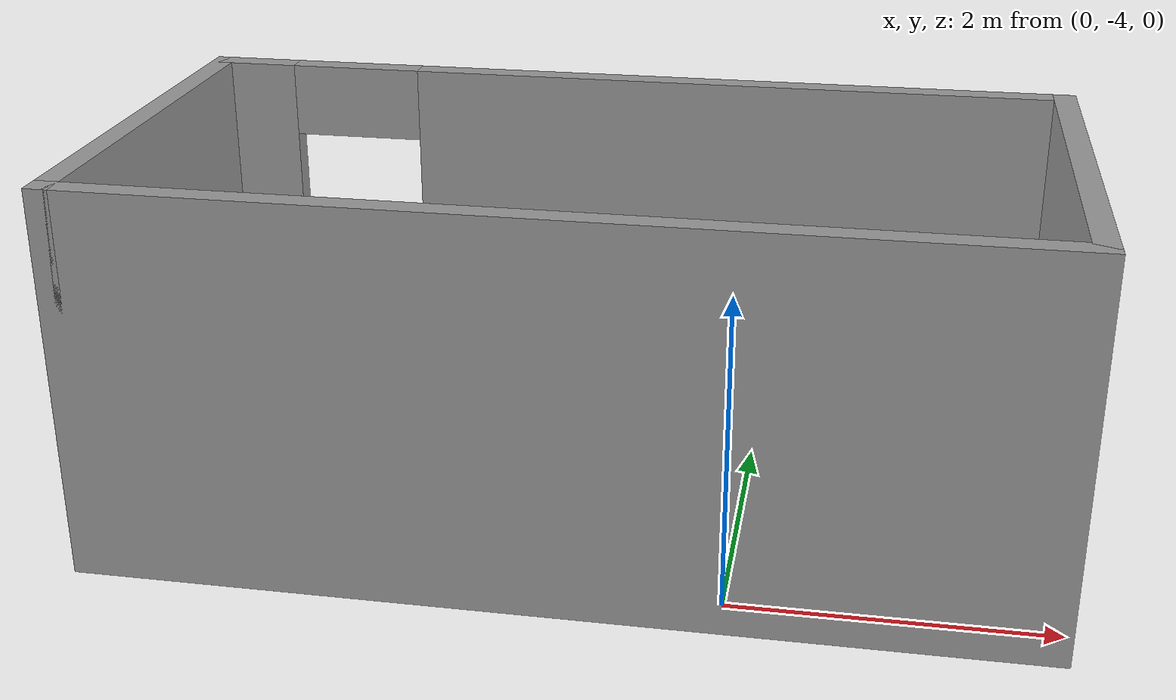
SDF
<?xml version='1.0'?>
<sdf version='1.6'>
  <model name='office2'>
    <pose>-0.995 -2.1575 0 0 -0 0</pose>
    <link name='Wall_1'>
      <collision name='Wall_1_Collision'>
        <geometry>
          <box>
            <size>6 0.15 2.5</size>
          </box>
        </geometry>
        <pose>0 0 1.25 0 -0 0</pose>
      </collision>
      <visual name='Wall_1_Visual'>
        <pose>0 0 1.25 0 -0 0</pose>
        <geometry>
          <box>
            <size>6 0.15 2.5</size>
          </box>
        </geometry>
        <material>
          <script>
            <uri>file://media/materials/scripts/gazebo.material</uri>
            <name>Gazebo/Grey</name>
          </script>
          <ambient>1 1 1 1</ambient>
        </material>
        <meta>
          <layer>0</layer>
        </meta>
      </visual>
      <pose>0 -2.0825 0 0 -0 0</pose>
    </link>
    <link name='Wall_2'>
      <collision name='Wall_2_Collision'>
        <geometry>
          <box>
            <size>3 0.15 2.5</size>
          </box>
        </geometry>
        <pose>0 0 1.25 0 -0 0</pose>
      </collision>
      <visual name='Wall_2_Visual'>
        <pose>0 0 1.25 0 -0 0</pose>
        <geometry>
          <box>
            <size>3 0.15 2.5</size>
          </box>
        </geometry>
        <material>
          <script>
            <uri>file://media/materials/scripts/gazebo.material</uri>
            <name>Gazebo/Grey</name>
          </script>
          <ambient>1 1 1 1</ambient>
        </material>
        <meta>
          <layer>0</layer>
        </meta>
      </visual>
      <pose>2.925 -0.6575 0 0 -0 1.5708</pose>
    </link>
    <link name='Wall_3'>
      <pose>0 0.7675 0 0 -0 3.14159</pose>
      <visual name='Wall_3_Visual_0'>
        <pose>-0.7575 0 1.25 0 -0 0</pose>
        <geometry>
          <box>
            <size>4.485 0.15 2.5</size>
          </box>
        </geometry>
        <material>
          <script>
            <uri>file://media/materials/scripts/gazebo.material</uri>
            <name>Gazebo/Grey</name>
          </script>
          <ambient>1 1 1 1</ambient>
        </material>
        <meta>
          <layer>0</layer>
        </meta>
      </visual>
      <collision name='Wall_3_Collision_0'>
        <geometry>
          <box>
            <size>4.485 0.15 2.5</size>
          </box>
        </geometry>
        <pose>-0.7575 0 1.25 0 -0 0</pose>
      </collision>
      <visual name='Wall_3_Visual_1'>
        <pose>2.6925 0 1.25 0 -0 0</pose>
        <geometry>
          <box>
            <size>0.615 0.15 2.5</size>
          </box>
        </geometry>
        <material>
          <script>
            <uri>file://media/materials/scripts/gazebo.material</uri>
            <name>Gazebo/Grey</name>
          </script>
          <ambient>1 1 1 1</ambient>
        </material>
        <meta>
          <layer>0</layer>
        </meta>
      </visual>
      <collision name='Wall_3_Collision_1'>
        <geometry>
          <box>
            <size>0.615 0.15 2.5</size>
          </box>
        </geometry>
        <pose>2.6925 0 1.25 0 -0 0</pose>
      </collision>
      <visual name='Wall_3_Visual_2'>
        <pose>1.935 0 2.25 0 -0 0</pose>
        <geometry>
          <box>
            <size>0.9 0.15 0.5</size>
          </box>
        </geometry>
        <material>
          <script>
            <uri>file://media/materials/scripts/gazebo.material</uri>
            <name>Gazebo/Grey</name>
          </script>
          <ambient>1 1 1 1</ambient>
        </material>
        <meta>
          <layer>0</layer>
        </meta>
      </visual>
      <collision name='Wall_3_Collision_2'>
        <geometry>
          <box>
            <size>0.9 0.15 0.5</size>
          </box>
        </geometry>
        <pose>1.935 0 2.25 0 -0 0</pose>
      </collision>
    </link>
    <link name='Wall_4'>
      <collision name='Wall_4_Collision'>
        <geometry>
          <box>
            <size>3 0.15 2.5</size>
          </box>
        </geometry>
        <pose>0 0 1.25 0 -0 0</pose>
      </collision>
      <visual name='Wall_4_Visual'>
        <pose>0 0 1.25 0 -0 0</pose>
        <geometry>
          <box>
            <size>3 0.15 2.5</size>
          </box>
        </geometry>
        <material>
          <script>
            <uri>file://media/materials/scripts/gazebo.material</uri>
            <name>Gazebo/Grey</name>
          </script>
          <ambient>1 1 1 1</ambient>
        </material>
        <meta>
          <layer>0</layer>
        </meta>
      </visual>
      <pose>-2.925 -0.6575 0 0 -0 -1.5708</pose>
    </link>
    <static>1</static>
  </model>
</sdf>
